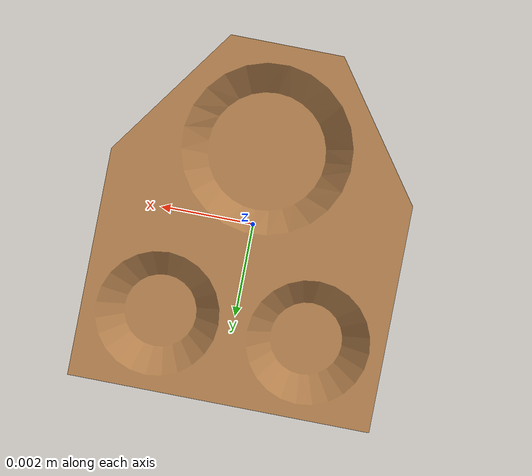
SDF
<?xml version="1.0" encoding="UTF-8"?>
<sdf version="1.5">
   <model name="sku_kit_m2l1_vessel">
      <static>true</static>
      <link name="link1">
        <inertial>
            <mass>0.39</mass>
            <inertia>
               <ixx>8.54977215e+01</ixx>
               <ixy>5.18963385e-03</ixy>
               <ixz>-6.49974690e-05</ixz>
               <iyy>7.01009727e+01</iyy>
               <iyz>-7.13569718e-02</iyz>
               <izz>1.54056453e+02</izz>
            </inertia>
         </inertial>
         <collision name="collision1">
            <pose>0 0 0.0 0 0 0</pose>
            <geometry>
               <mesh>
                  <scale>0.0254 0.0254 0.0254</scale>
                  <uri>model://gear_support/meshes/newKitTray_1Large_2Medium_Centered_ZeroZmin.stl</uri>
               </mesh>
            </geometry>
         </collision>
         <visual name="visual1">
            <pose>0 0 0 0 0 0</pose>
            <geometry>
               <mesh>
                  <scale>0.001 0.001 0.001</scale>
                  <uri>model://gear_support/meshes/newKitTray_1Large_2Medium_Centered_ZeroZmin.stl</uri>
               </mesh>
            </geometry>
            <material>
               <script>
                  <name>Gazebo/Wood</name>
                  <uri>__default__</uri>
               </script>
            </material>
         </visual>
      </link>
   </model>
</sdf>
